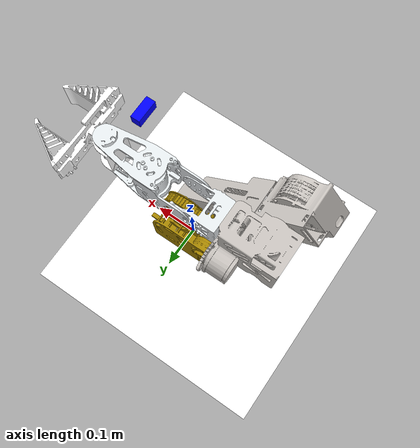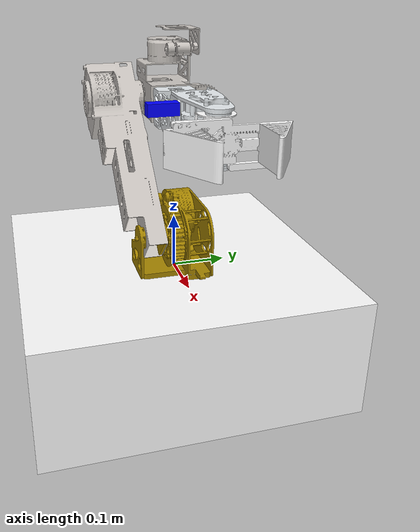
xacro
<?xml version="1.0"?>
<robot xmlns:xacro="http://www.ros.org/wiki/xacro" name="new_wust">
    <xacro:arg name="initial_positions_file" default="initial_positions.yaml" />

    <!-- Import new_wust urdf file -->
    <xacro:include filename="$(find new_wust_description)/urdf/robot.urdf" />

    <!-- Import control_xacro -->
    <xacro:include filename="new_wust.ros2_control.xacro" />

    <xacro:new_wust_ros2_control name="FakeSystem" initial_positions_file="$(arg initial_positions_file)"/>

</robot>

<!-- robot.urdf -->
<robot name="new_wust">
  <link name="base">
    <inertial>
      <origin xyz="-0.05275621 0 -0.114" rpy="0 0 0"/>
      <mass value="77.64268623"/>
      <inertia ixx="2.59957459" ixy="0" ixz="0" iyy="2.52245405" iyz="0" izz="4.4493324"/>
    </inertial>
    <visual>
      <origin xyz="0 0 0" rpy="0 0 0"/>
      <geometry><mesh filename="package://new_wust_description/meshes/base_collision.stl"/></geometry>
      <material name="base_color"><color rgba="1 1 1 1"/></material>
    </visual>
    <collision>
      <origin xyz="0 0 0" rpy="0 0 0"/>
      <geometry><mesh filename="package://new_wust_description/meshes/base_collision.stl"/></geometry>
    </collision>
  </link>
  <link name="link1">
    <inertial>
      <origin xyz="-0.02727394 0.00842308 0.06055814" rpy="0 0 0"/>
      <mass value="2.63911029"/>
      <inertia ixx="0.0056987" ixy="0.00178451" ixz="0.0008721" iyy="0.01110114" iyz="-0.00033231" izz="0.0105227"/>
    </inertial>
    <visual>
      <origin xyz="0 0 0" rpy="0 0 0"/>
      <geometry><mesh filename="package://new_wust_description/meshes/link1_collision.stl"/></geometry>
      <material name="link1_color"><color rgba="0.64705882 0.51764706 0 1"/></material>
    </visual>
    <collision>
      <origin xyz="0 0 0" rpy="0 0 0"/>
      <geometry><mesh filename="package://new_wust_description/meshes/link1_collision.stl"/></geometry>
    </collision>
  </link>
  <link name="link2">
    <inertial>
      <origin xyz="-0.1969102 -0.08309513 0.18808011" rpy="0 0 0"/>
      <mass value="2.16839329"/>
      <inertia ixx="0.01003323" ixy="-0.00117634" ixz="0.00714971" iyy="0.01702904" iyz="0.00107855" izz="0.01078354"/>
    </inertial>
    <visual>
      <origin xyz="0 0 0" rpy="0 0 0"/>
      <geometry><mesh filename="package://new_wust_description/meshes/link2_collision.stl"/></geometry>
      <material name="link2_color"><color rgba="0.77647059 0.75686275 0.7372549 1"/></material>
    </visual>
    <collision>
      <origin xyz="0 0 0" rpy="0 0 0"/>
      <geometry><mesh filename="package://new_wust_description/meshes/link2_collision.stl"/></geometry>
    </collision>
  </link>
  <link name="link3">
    <inertial>
      <origin xyz="0.03246142 0.15810874 0.05239528" rpy="0 0 0"/>
      <mass value="1.95129296"/>
      <inertia ixx="0.00805887" ixy="-0.00084279" ixz="0.00121672" iyy="0.00793828" iyz="0.00012153" izz="0.00486219"/>
    </inertial>
    <visual>
      <origin xyz="0 0 0" rpy="0 0 0"/>
      <geometry><mesh filename="package://new_wust_description/meshes/link3_collision.stl"/></geometry>
      <material name="link3_color"><color rgba="0.77647059 0.75686275 0.7372549 1"/></material>
    </visual>
    <collision>
      <origin xyz="0 0 0" rpy="0 0 0"/>
      <geometry><mesh filename="package://new_wust_description/meshes/link3_collision.stl"/></geometry>
    </collision>
  </link>
  <link name="link4">
    <inertial>
      <origin xyz="0.06590589 0.00030868 -0.0001022" rpy="0 0 0"/>
      <mass value="0.54710506"/>
      <inertia ixx="0.00050822" ixy="0.00002396" ixz="-5.4e-7" iyy="0.00096167" iyz="8.2e-7" izz="0.00106722"/>
    </inertial>
    <visual>
      <origin xyz="0 0 0" rpy="0 0 0"/>
      <geometry><mesh filename="package://new_wust_description/meshes/link4_collision.stl"/></geometry>
      <material name="link4_color"><color rgba="0.89803922 0.91764706 0.92941176 1"/></material>
    </visual>
    <collision>
      <origin xyz="0 0 0" rpy="0 0 0"/>
      <geometry><mesh filename="package://new_wust_description/meshes/link4_collision.stl"/></geometry>
    </collision>
  </link>
  <link name="link5">
    <inertial>
      <origin xyz="0.0697811 -0.01344256 0.00004184" rpy="0 0 0"/>
      <mass value="0.59565109"/>
      <inertia ixx="0.00060321" ixy="0.00000739" ixz="0.00000299" iyy="0.00068739" iyz="-7.3e-7" izz="0.00062993"/>
    </inertial>
    <visual>
      <origin xyz="0 0 0" rpy="0 0 0"/>
      <geometry><mesh filename="package://new_wust_description/meshes/link5_collision.stl"/></geometry>
      <material name="link5_color"><color rgba="0.89803922 0.91764706 0.92941176 1"/></material>
    </visual>
    <collision>
      <origin xyz="0 0 0" rpy="0 0 0"/>
      <geometry><mesh filename="package://new_wust_description/meshes/link5_collision.stl"/></geometry>
    </collision>
  </link>
  <link name="link6">
    <inertial>
      <origin xyz="0.0626967 0.00108019 -0.01078724" rpy="0 0 0"/>
      <mass value="0.28529112"/>
      <inertia ixx="0.00061516" ixy="0.00000854" ixz="0.00000796" iyy="0.00106579" iyz="0.00001387" izz="0.00061896"/>
    </inertial>
    <visual>
      <origin xyz="0 0 0" rpy="0 0 0"/>
      <geometry><mesh filename="package://new_wust_description/meshes/link6_collision.stl"/></geometry>
      <material name="link6_color"><color rgba="0.89803922 0.91764706 0.92941176 1"/></material>
    </visual>
    <collision>
      <origin xyz="0 0 0" rpy="0 0 0"/>
      <geometry><mesh filename="package://new_wust_description/meshes/link6_collision.stl"/></geometry>
    </collision>
  </link>
  <link name="link7">
    <inertial>
      <origin xyz="0.0502124 -0.00004321 -0.00014695" rpy="0 0 0"/>
      <mass value="1.13909779"/>
      <inertia ixx="0.0025491" ixy="-0.00000359" ixz="-0.0000047" iyy="0.00253909" iyz="0.00006385" izz="0.00450439"/>
    </inertial>
    <visual>
      <origin xyz="0 0 0" rpy="0 0 0"/>
      <geometry><mesh filename="package://new_wust_description/meshes/link7_collision.stl"/></geometry>
      <material name="link7_color"><color rgba="1 1 1 1"/></material>
    </visual>
    <collision>
      <origin xyz="0 0 0" rpy="0 0 0"/>
      <geometry><mesh filename="package://new_wust_description/meshes/link7_collision.stl"/></geometry>
    </collision>
  </link>
  <link name="LINK_TCP">
    <inertial>
      <origin xyz="0 0 0" rpy="0 0 0"/>
      <mass value="0.1"/>
      <inertia ixx="1e-5" ixy="0" ixz="0" iyy="1e-5" iyz="0" izz="1e-5"/>
    </inertial>
    <collision>
      <geometry><box size="0.05 0.05 0.05"/></geometry>     <!-- 旧模型就是这么写的 -->
    </collision>
  </link>
  <link name="camera_link">
    <visual>
      <geometry><box size="0.02 0.05 0.02"/></geometry>     <!-- 旧模型的尺寸 -->
      <material name="blue"><color rgba="0 0 1 1"/></material>
    </visual>
  </link>

  <link name="camera_optical_frame">                           <!-- 不留任何几何体 -->
  </link>

  <joint name="joint1" type="revolute">
    <parent link="base"/>
    <child link="link1"/>
    <origin xyz="0 0 0" rpy="0 0 0"/>
    <axis xyz="0 0 -1"/>
    <limit lower="-3.14" upper="3.14" effort="10" velocity="3"/>
  </joint>
  <joint name="joint2" type="revolute">
    <parent link="link1"/>
    <child link="link2"/>
    <origin xyz="0.02424 0.0072 0.073" rpy="0 0 0"/>
    <axis xyz="0 1 0"/>
    <limit lower="-3.14" upper="3.14" effort="10" velocity="3"/>
  </joint>
  <joint name="joint3" type="revolute">
    <parent link="link2"/>
    <child link="link3"/>
    <origin xyz="-0.22100422 -0.1247 0.21453973" rpy="0 0 0"/>
    <axis xyz="0 -1 0"/>
    <limit lower="-3.14" upper="3.14" effort="10" velocity="3"/>
  </joint>
  <joint name="joint4" type="revolute">
    <parent link="link3"/>
    <child link="link4"/>
    <origin xyz="0.072 0.1396 0" rpy="0 0 0"/>
    <axis xyz="1 0 0"/>
    <limit lower="-3.14" upper="3.14" effort="10" velocity="3"/>
  </joint>
  <joint name="joint5" type="revolute">
    <parent link="link4"/>
    <child link="link5"/>
    <origin xyz="0.112 0.013075 0" rpy="0 0 0"/>
    <axis xyz="0 -1 0"/>
    <limit lower="-3.14" upper="3.14" effort="10" velocity="3"/>
  </joint>
  <joint name="joint6" type="revolute">
    <parent link="link5"/>
    <child link="link6"/>
    <origin xyz="0.08050003 -0.0137 0.0135" rpy="0 0 0"/>
    <axis xyz="0 0 -1"/>
    <limit lower="-3.14" upper="3.14" effort="10" velocity="3"/>
  </joint>
  <joint name="joint7" type="revolute">
    <parent link="link6"/>
    <child link="link7"/>
    <origin xyz="0.0715 0 -0.0068" rpy="0 0 0"/>
    <axis xyz="-1 0 0"/>
    <limit lower="-3.14" upper="3.14" effort="10" velocity="3"/>
  </joint>
  <joint name="vacuum_tcp" type="fixed">
    <origin xyz="0.0366 0 -0.081603" rpy="3.1416 0 3.1416"/>
    <parent link="link7"/> <child link="LINK_TCP"/>
  </joint>
  <joint name="camera_joint" type="fixed">
      <origin xyz="0 -0.08 0.04" rpy="3.1416 0 3.1416"/>
      <parent link="link7"/> <child link="camera_link"/>
  </joint>
  <joint name="camera_optical_joint" type="fixed">
    <origin xyz="0 0 0" rpy="0 0 0"/>
    <parent link="camera_link"/> <child link="camera_optical_frame"/>
  </joint>
</robot>
